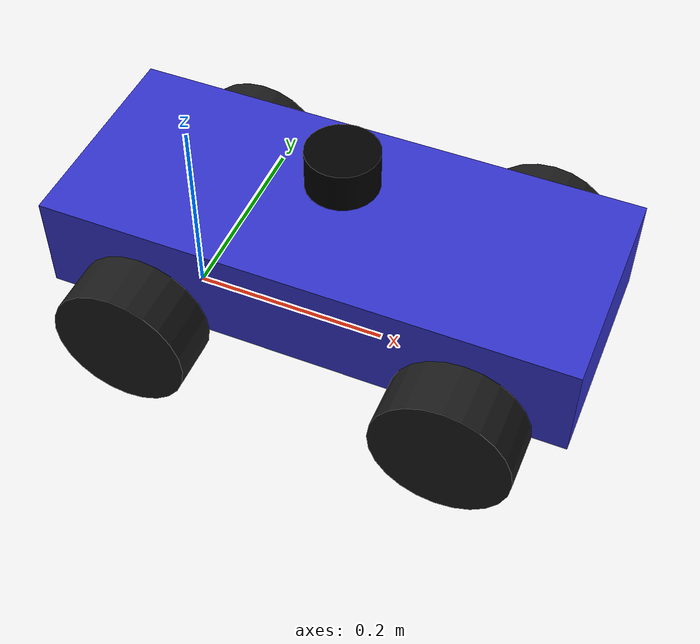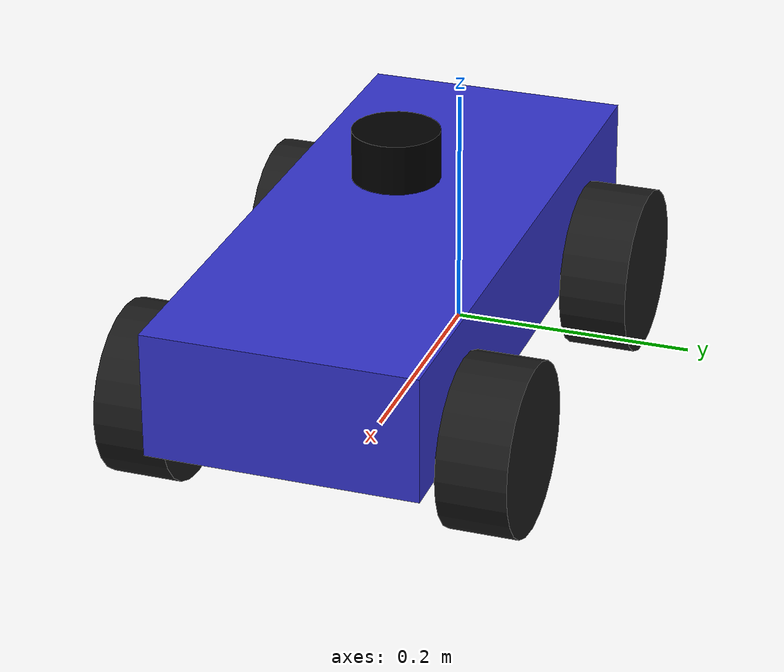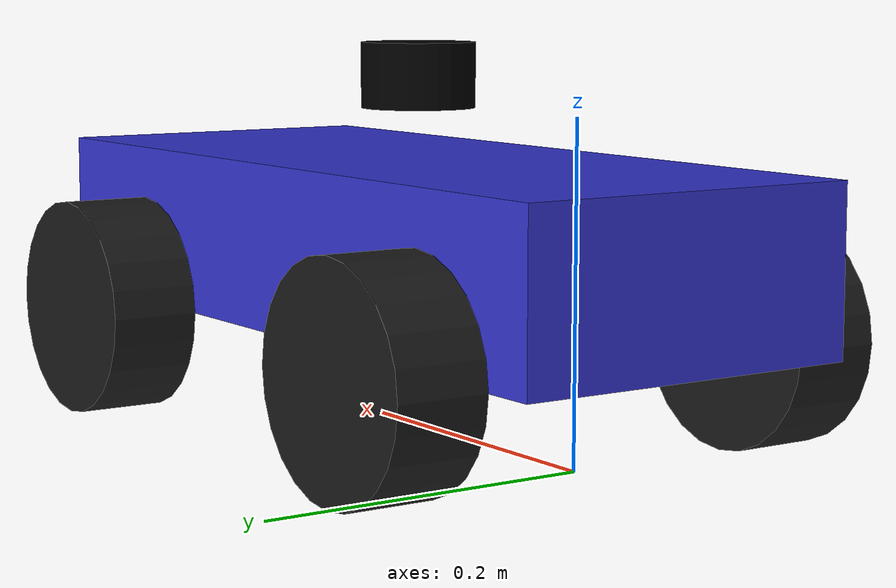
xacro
<?xml version="1.0"?>
<robot name="ackermann_robot" xmlns:xacro="http://www.ros.org/wiki/xacro">

  <!--               PARAMETERS                   -->
  <xacro:property name="B" value="0.3175" /> <!-- 12.5 inches, Wheelbase (front-to-back distance) -->
  <xacro:property name="L" value="0.27" /> <!-- 10.625 inches Track Width (left-to-right distance) -->
  <xacro:property name="W" value="0.055" /> <!-- 55 mm Wheel Width -->
  <xacro:property name="R" value="0.0675" /> <!-- 67.5 mm Wheel Radius -->

  <xacro:property name="X_OFFSET" value="0.2" /> <!-- 67.5 mm Wheel Radius -->
  <xacro:property name="H" value="0.1" /> <!-- 67.5 mm Wheel Radius -->
  <xacro:property name="chassis_mass" value="10.0" />
  <xacro:property name="wheel_mass" value="1.0" />
  <xacro:property name="total_mass" value="1.0" />
  <xacro:property name="Lower_angle_limit" value="-0.6" />
  <xacro:property name="Upper_angle_limit" value="0.6" />
  <xacro:property name="velocity" value="1.0" />
  <xacro:property name="Effort" value="10.0" />

  <xacro:property name="Wheel_y_inertia" value="${wheel_mass * R * R/2.0}" />
  <xacro:property name="Wheel_inertia" value="${wheel_mass * W * W/12.0 + wheel_mass * R * R/4.0}" />

  <!-- Base footprint / origin link -->
  <link name="base_footprint"/>

  <!-- Base Link / Chassis -->
  <joint name="base_footprint_joint" type="fixed">
    <parent link="base_footprint"/>
    <child link="base_link"/>
    <origin xyz="0 0 ${R}" rpy="0 0 0"/>
  </joint>

  <link name="base_link">
    <visual>
      <origin xyz="${B/2} 0 ${H/2}" rpy="0 0 0"/>
      <geometry>
        <box size="${B + X_OFFSET} ${L - W} ${H}"/>
      </geometry>
      <material name="chassis_color">
        <color rgba="0.2 0.2 0.8 1.0"/>
      </material>
    </visual>
    <collision>
      <origin xyz="${B/2} 0 ${H/2}" rpy="0 0 0"/>
      <geometry>
        <box size="${B + X_OFFSET} ${L - W} ${H}"/>
      </geometry>
    </collision>
    <inertial>
      <origin xyz="${B/2} 0 ${H/2}" rpy="0 0 0"/>
      <mass value="${chassis_mass}"/>
      <inertia ixx="${total_mass * ((L+W)*(L+W) + H * H)/12.0}" ixy="0" ixz="0"
               iyy="${total_mass * ((B + X_OFFSET)*(B + X_OFFSET) + H * H)/12.0}" iyz="0"
               izz="${total_mass * ((B + X_OFFSET)*(B + X_OFFSET) + (L+W)*(L+W))/12.0}"/>
    </inertial>
  </link>

  <!--             REAR WHEELS (DRIVE)            -->

  <!-- Rear Left Wheel -->
  <joint name="rear_left_wheel_joint" type="continuous">
    <parent link="base_link"/>
    <child link="rear_left_wheel"/>
    <origin xyz="0 ${L/2} 0" rpy="-${pi/2} 0 0"/>
    <axis xyz="0 0 1"/>
  </joint>

  <link name="rear_left_wheel">
    <visual>
      <geometry>
        <cylinder radius="${R}" length="${W}"/>
      </geometry>
      <material name="wheel_color">
        <color rgba="0.1 0.1 0.1 1.0"/>
      </material>
    </visual>
    <collision>
      <geometry>
        <cylinder radius="${R}" length="${W}"/>
      </geometry>
    </collision>
    <inertial>
      <mass value="${wheel_mass}"/>
      <inertia ixx="${Wheel_inertia}" ixy="0" ixz="0"
               iyy="${Wheel_y_inertia}" iyz="0"
               izz="${Wheel_inertia}"/>
    </inertial>
  </link>

  <!-- Rear Right Wheel -->
  <joint name="rear_right_wheel_joint" type="continuous">
    <parent link="base_link"/>
    <child link="rear_right_wheel"/>
    <origin xyz="0 -${L/2} 0" rpy="-${pi/2} 0 0"/>
    <axis xyz="0 0 1"/>
  </joint>

  <link name="rear_right_wheel">
    <visual>
      <geometry>
        <cylinder radius="${R}" length="${W}"/>
      </geometry>
      <material name="wheel_color"/>
    </visual>
    <collision>
      <geometry>
        <cylinder radius="${R}" length="${W}"/>
      </geometry>
    </collision>
    <inertial>
      <mass value="${wheel_mass}"/>
      <inertia ixx="${Wheel_inertia}" ixy="0" ixz="0"
               iyy="${Wheel_y_inertia}" iyz="0"
               izz="${Wheel_inertia}"/>
    </inertial>
  </link>

  <!--           FRONT STEERING & WHEELS          -->

  <!-- Front Left Steering Hinge (Revolute joint for steering) -->
  <joint name="front_left_steer_joint" type="revolute">
    <parent link="base_link"/>
    <child link="front_left_steer_link"/>
    <origin xyz="${B} ${L/2} 0" rpy="0 0 0"/>
    <axis xyz="0 0 1"/>
    <limit lower="${Lower_angle_limit}" upper="${Upper_angle_limit}" effort="${Effort}" velocity="${velocity}"/>
  </joint>

  <link name="front_left_steer_link">
    <inertial>
      <mass value="0.1"/>
      <inertia ixx="0.0001" ixy="0" ixz="0"
               iyy="0.0001" iyz="0"
               izz="0.0001"/>
    </inertial>
  </link>

  <!-- Front Left Wheel attached to steering link -->
  <joint name="front_left_wheel_joint" type="continuous">
    <parent link="front_left_steer_link"/>
    <child link="front_left_wheel"/>
    <origin xyz="0 0 0" rpy="-${pi/2} 0 0"/>
    <axis xyz="0 0 1"/>
  </joint>

  <link name="front_left_wheel">
    <visual>
      <geometry>
        <cylinder radius="${R}" length="${W}"/>
      </geometry>
      <material name="wheel_color"/>
    </visual>
    <collision>
      <geometry>
        <cylinder radius="${R}" length="${W}"/>
      </geometry>
    </collision>
    <inertial>
      <mass value="${wheel_mass}"/>
      <inertia ixx="${Wheel_inertia}" ixy="0" ixz="0"
               iyy="${Wheel_y_inertia}" iyz="0"
               izz="${Wheel_inertia}"/>
    </inertial>
  </link>

  <!-- Front Right Steering Hinge -->
  <joint name="front_right_steer_joint" type="revolute">
    <parent link="base_link"/>
    <child link="front_right_steer_link"/>
    <origin xyz="${B} -${L/2} 0" rpy="0 0 0"/>
    <axis xyz="0 0 1"/>
    <limit lower="${Lower_angle_limit}" upper="${Upper_angle_limit}" effort="${Effort}" velocity="${velocity}"/>
  </joint>

  <link name="front_right_steer_link">
    <inertial>
      <mass value="0.1"/>
      <inertia ixx="0.0001" ixy="0" ixz="0"
               iyy="0.0001" iyz="0"
               izz="0.0001"/>
    </inertial>
  </link>

  <!-- Front Right Wheel attached to steering link -->
  <joint name="front_right_wheel_joint" type="continuous">
    <parent link="front_right_steer_link"/>
    <child link="front_right_wheel"/>
    <origin xyz="0 0 0" rpy="-${pi/2} 0 0"/>
    <axis xyz="0 0 1"/>
  </joint>

  <link name="front_right_wheel">
    <visual>
      <geometry>
        <cylinder radius="${R}" length="${W}"/>
      </geometry>
      <material name="wheel_color"/>
    </visual>
    <collision>
      <geometry>
        <cylinder radius="${R}" length="${W}"/>
      </geometry>
    </collision>
    <inertial>
      <mass value="${wheel_mass}"/>
      <inertia ixx="${Wheel_inertia}" ixy="0" ixz="0"
               iyy="${Wheel_y_inertia}" iyz="0"
               izz="${Wheel_inertia}"/>
    </inertial>
  </link>

  <!--             SENSORS (HARDWARE)             -->

  <!-- LiDAR Frame (Adjust origin xyz/rpy to match your physical mount) -->
  <joint name="laser_joint" type="fixed">
    <parent link="base_link"/>
    <child link="laser_frame"/>
    <origin xyz="${B/2} 0 ${H + 0.05}" rpy="0 0 0"/>
  </joint>

  <link name="laser_frame">
    <visual>
      <geometry>
        <cylinder radius="0.035" length="0.04"/>
      </geometry>
      <material name="lidar_black">
        <color rgba="0.0 0.0 0.0 1.0"/>
      </material>
    </visual>
  </link>

  <!-- IMU Link (Adjust location relative to base_link center) -->
  <joint name="imu_joint" type="fixed">
    <parent link="base_link"/>
    <child link="imu_link"/>
    <origin xyz="${B/2} 0 ${H/2}" rpy="0 0 0"/>
  </joint>

  <link name="imu_link"/>

  <ros2_control name="AckermannRobotHardware" type="system">
    <hardware>
      <plugin>ackermann_hardware/AckermannSystem</plugin>
      <param name="canbus_name">can0</param>
      <param name="motor_id">2</param>
      <param name="motor_inverted">true</param>
      <param name="gear_ratio">2.0</param>
      <param name="max_motor_speed_rps">1.0</param>
      <param name="max_steering_angle">0.6</param>
      <param name="pwmchip_path">/sys/class/pwm/pwmchip0</param>
      <param name="pwm_channel">0</param>
      <param name="pwm_period_ns">20000000</param>
      <param name="servo_min_pulse_ns">1000000</param>
      <param name="servo_center_pulse_ns">1500000</param>
      <param name="servo_max_pulse_ns">2000000</param>
      <param name="stator_current_limit">40.0</param>
      <param name="supply_current_limit">20.0</param>
    </hardware>

  <!-- Traction Wheels (Rear) -->
  <joint name="rear_left_wheel_joint">
    <command_interface name="velocity"/>
    <state_interface name="velocity"/>
    <state_interface name="position"/>
  </joint>
  <joint name="rear_right_wheel_joint">
    <command_interface name="velocity"/>
    <state_interface name="velocity"/>
    <state_interface name="position"/>
  </joint>

  <!-- Steering Knuckles (Front) -->
  <joint name="front_left_steer_joint">
    <command_interface name="position"/>
    <state_interface name="position"/>
  </joint>
  <joint name="front_right_steer_joint">
    <command_interface name="position"/>
    <state_interface name="position"/>
  </joint>
</ros2_control>
</robot>
